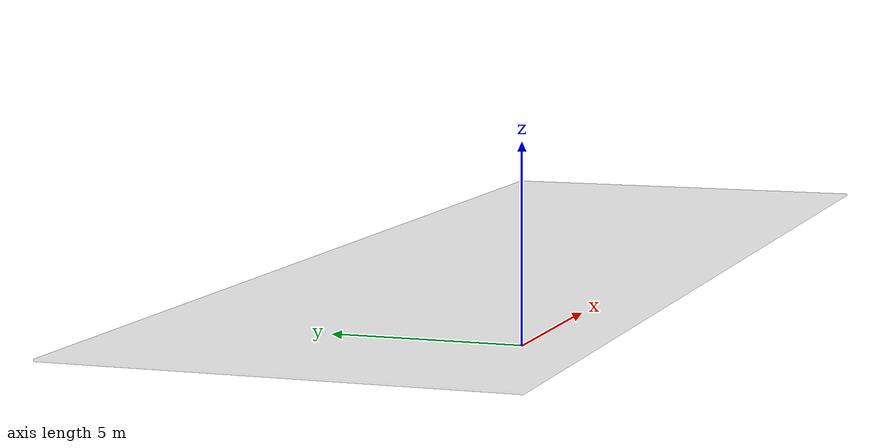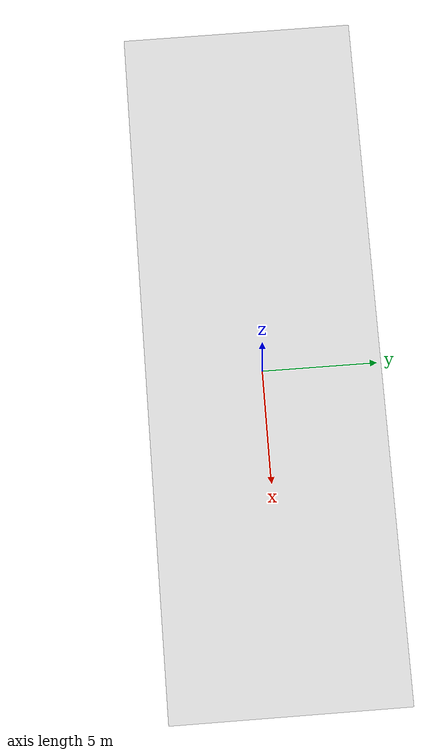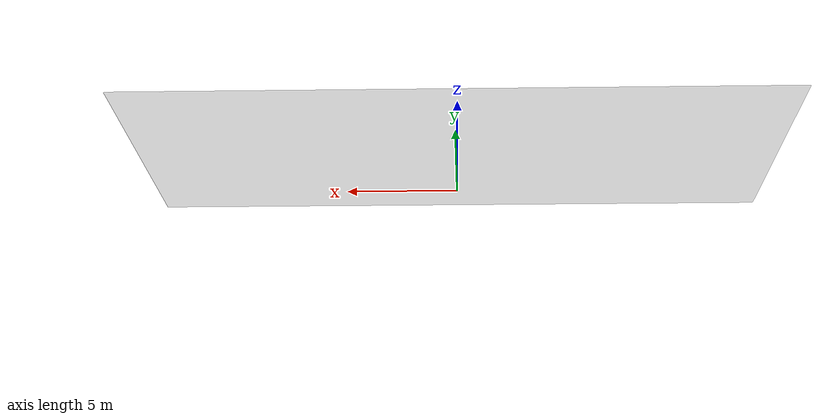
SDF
<?xml version='1.0'?>
<sdf version='1.7'>
  <model name='ceiling_plane'>
    <static>0</static>
    <link name='ceiling'>
      <pose>0 0 2.1 0 -0 0</pose>
      <inertial>
        <inertia>
          <ixx>506.983</ixx>
          <ixy>0</ixy>
          <ixz>0</ixz>
          <iyy>506.983</iyy>
          <iyz>0</iyz>
          <izz>1013.33</izz>
        </inertia>
        <mass>1520</mass>
        <pose>0 0 0 0 -0 0</pose>
      </inertial>
      <self_collide>0</self_collide>
      <enable_wind>0</enable_wind>
      <kinematic>0</kinematic>
      <gravity>0</gravity>
      <visual name='ceiling_visual'>
        <cast_shadows>0</cast_shadows>
        <transparency>0.7</transparency>
        <geometry>
          <box>
            <size>30 10 0.05</size>
          </box>
        </geometry>
        <material>
          <lighting>1</lighting>
          <script>
            <uri>file://media/materials/scripts/gazebo.material</uri>
            <name>Gazebo/Grey</name>
          </script>
          <shader type='pixel'>
            <normal_map>__default__</normal_map>
          </shader>
          <ambient>0.3 0.3 0.3 1</ambient>
          <diffuse>0.7 0.7 0.7 1</diffuse>
          <specular>0.01 0.01 0.01 1</specular>
          <emissive>0 0 0 1</emissive>
        </material>
        <pose>0 0 0 0 -0 0</pose>
      </visual>
      <collision name='ceiling_collision'>
        <laser_retro>0</laser_retro>
        <max_contacts>10</max_contacts>
        <pose>0 0 0 0 -0 0</pose>
        <geometry>
          <box>
            <size>30 10 0.05</size>
          </box>
        </geometry>
        <surface>
          <friction>
            <ode>
              <mu>100000</mu>
              <mu2>100000</mu2>
              <fdir1>0 0 0</fdir1>
              <slip1>0</slip1>
              <slip2>0</slip2>
            </ode>
            <torsional>
              <coefficient>1</coefficient>
              <patch_radius>0</patch_radius>
              <surface_radius>0</surface_radius>
              <use_patch_radius>1</use_patch_radius>
              <ode>
                <slip>0</slip>
              </ode>
            </torsional>
          </friction>
          <bounce>
            <restitution_coefficient>0</restitution_coefficient>
            <threshold>1e+06</threshold>
          </bounce>
          <contact>
            <collide_without_contact>0</collide_without_contact>
            <collide_without_contact_bitmask>1</collide_without_contact_bitmask>
            <collide_bitmask>65535</collide_bitmask>
            <ode>
              <soft_cfm>0</soft_cfm>
              <soft_erp>0.2</soft_erp>
              <kp>1e+13</kp>
              <kd>1</kd>
              <max_vel>0.01</max_vel>
              <min_depth>0</min_depth>
            </ode>
            <bullet>
              <split_impulse>1</split_impulse>
              <split_impulse_penetration_threshold>-0.01</split_impulse_penetration_threshold>
              <soft_cfm>0</soft_cfm>
              <soft_erp>0.2</soft_erp>
              <kp>1e+13</kp>
              <kd>1</kd>
            </bullet>
          </contact>
        </surface>
      </collision>
      <sensor name='ceiling_contact_sensor' type='contact'>
        <always_on>1</always_on>
        <visualize>1</visualize>
        <contact>
          <collision>ceiling_collision</collision>
          <topic>__default_topic__</topic>
        </contact>
        <plugin name='contact_plugin' filename='libgazebo_ros_bumper.so'>
          <bumperTopicName>ceiling_contact</bumperTopicName>
          <frameName>ceiling</frameName>
          <alwaysOn>true</alwaysOn>
          <updateRate>500</updateRate>
        </plugin>
        <pose>0 0 0 0 -0 0</pose>
      </sensor>
    </link>
    <joint name="joint_01" type="fixed">
      <parent>world</parent>
      <child>ceiling</child>
      <pose>0 0 0 0 0 0</pose>
      <physics>
        <ode>
        </ode>
      </physics>
      <sensor name="force_torque" type="force_torque">
        <always_on>true</always_on>
        <update_rate>1000</update_rate>
      </sensor>
    </joint>
    <static>0</static>
    <allow_auto_disable>1</allow_auto_disable>
  </model>
</sdf>
